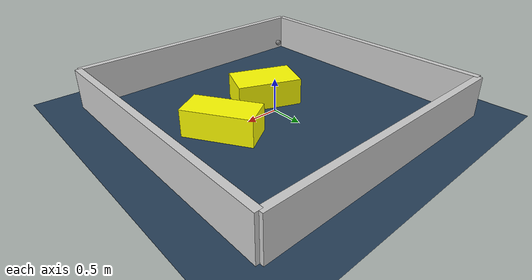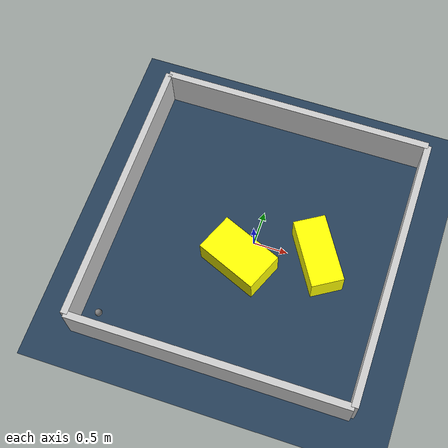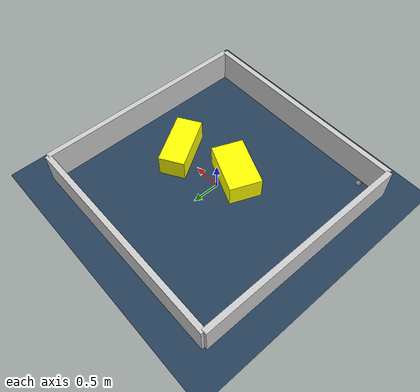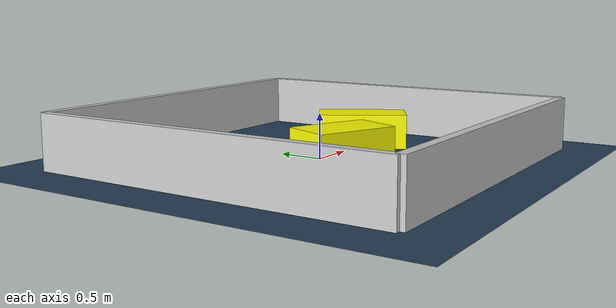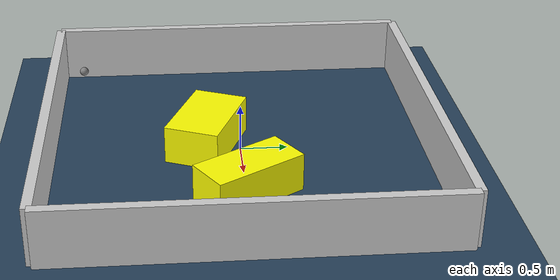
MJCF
<?xml version="1.0" ?>
<mujoco model="generated_environment">
  <option timestep="0.01" integrator="RK4" cone="elliptic"/>
  <default>
    <geom density="1"/>
  </default>
  <asset>
    <texture builtin="gradient" height="3072" rgb1="0.3 0.5 0.7" rgb2="0 0 0" type="skybox" width="512"/>
    <texture builtin="checker" height="300" mark="edge" markrgb="0.8 0.8 0.8" name="groundplane" rgb1="0.2 0.3 0.4" rgb2="0.1 0.2 0.3" type="2d" width="300"/>
    <material name="groundplane" reflectance="0.2" texrepeat="5 5" texture="groundplane" texuniform="true"/>
    <material name="robot" rgba="0.0 1.0 0.0 1"/>
  </asset>
  <worldbody>
    <light dir="0 0 -1" directional="true" pos="0 0 1.5"/>
    <geom condim="4" friction="1.0 0.005 0.001" material="groundplane" name="floor" size="0 0 0.05" type="plane"/>
    <body name="walls">
      <geom name="wall_1" condim="4" pos="-2.0 0.0 0.3" rgba="0.800000011920929 0.800000011920929 0.800000011920929 1.0" size="0.05 2.0 0.3" type="box"/>
      <geom name="wall_2" condim="4" pos="2.0 0.0 0.3" rgba="0.800000011920929 0.800000011920929 0.800000011920929 1.0" size="0.05 2.0 0.3" type="box"/>
      <geom name="wall_3" condim="4" pos="0.0 -2.0 0.3" rgba="0.800000011920929 0.800000011920929 0.800000011920929 1.0" size="2.0 0.05 0.3" type="box"/>
      <geom name="wall_4" condim="4" pos="0.0 2.0 0.3" rgba="0.800000011920929 0.800000011920929 0.800000011920929 1.0" size="2.0 0.05 0.3" type="box"/>
    </body>
    <body name="robot">
      <joint name="joint_x" type="slide" pos="0 0 0" axis="1 0 0"/>
      <joint name="joint_y" type="slide" pos="0 0 0" axis="0 1 0"/>
      <geom name="robot" type="sphere" pos="-1.6755788627508033 -1.7359058983176012 0.2" size="0.05" mass="5." friction="1.0 0.005 0.0001" condim="4"/>
      <site name="sensor_ball"/>
    </body>
    <body name="obstacle_1_movable">
      <geom name="obstacle_1_movable" condim="4" pos="0.9405849236090638 0.014393479763390893 0.2" euler="0 0 121.70471360992227" friction="1.0 0.005 0.001" rgba="1 1 0 1" size="0.5030239366812119 0.23403500965701474 0.2" type="box" mass="0.1"/>
      <joint type="free"/>
    </body>
    <body name="obstacle_2_movable">
      <geom name="obstacle_2_movable" condim="4" pos="-0.10782339477963099 -0.35060997546614403 0.2" euler="0 0 337.4101464234163" friction="1.0 0.005 0.001" rgba="1 1 0 1" size="0.47423619791713884 0.29005477833857624 0.2" type="box" mass="0.1"/>
      <joint type="free"/>
    </body>
  </worldbody>
  <actuator>
    <motor name="actuator_x" joint="joint_x" gear="1" ctrlrange="-1 1"/>
    <motor name="actuator_y" joint="joint_y" gear="1" ctrlrange="-1 1"/>
  </actuator>
</mujoco>
